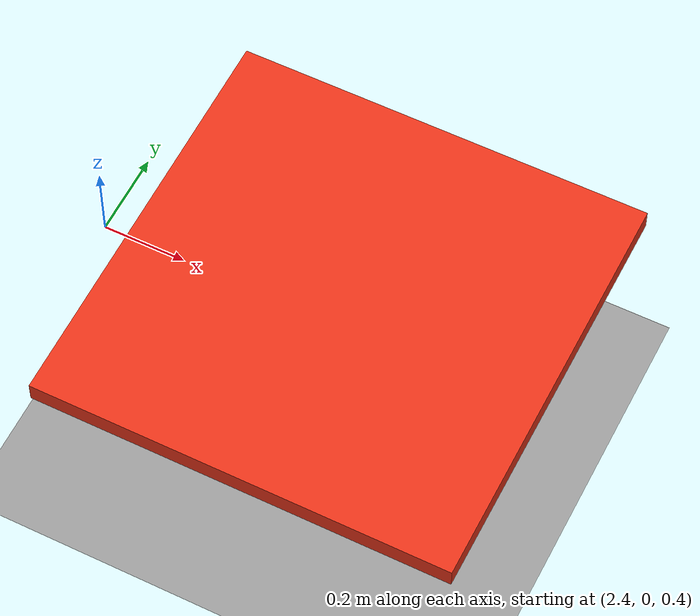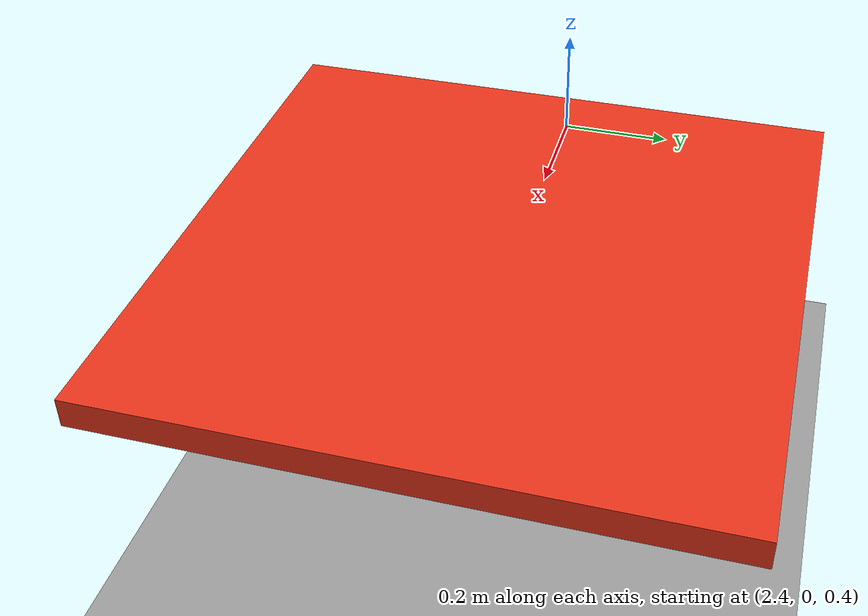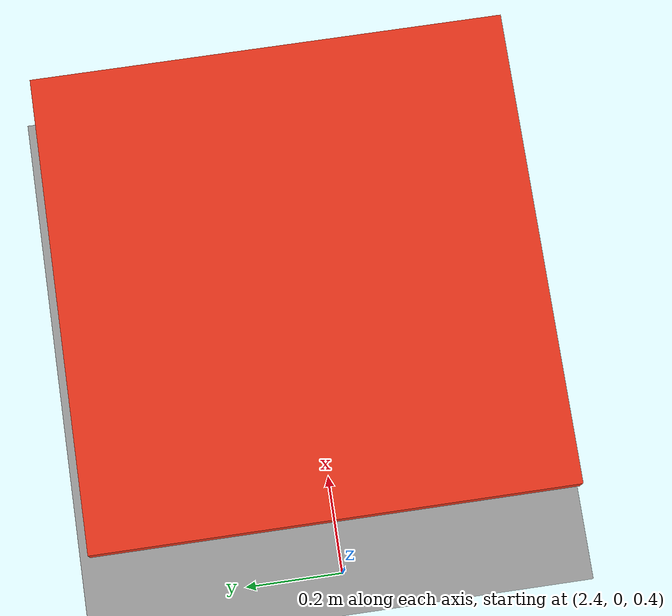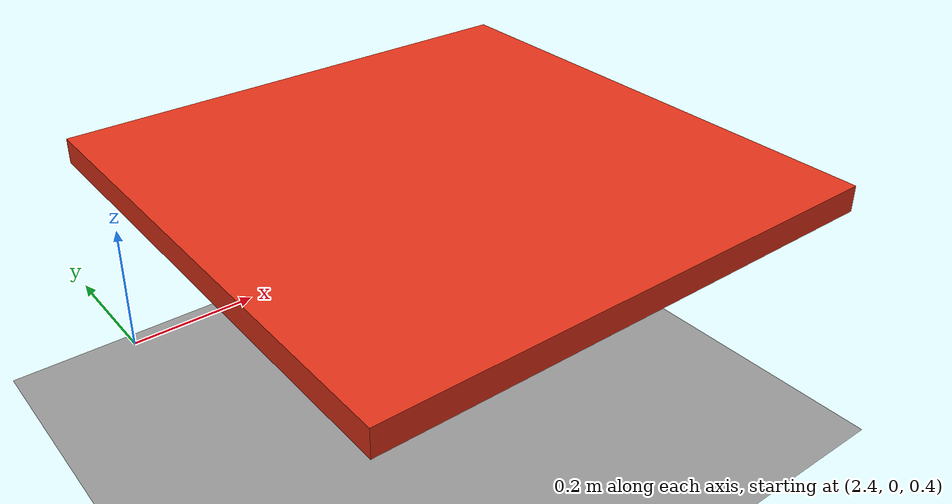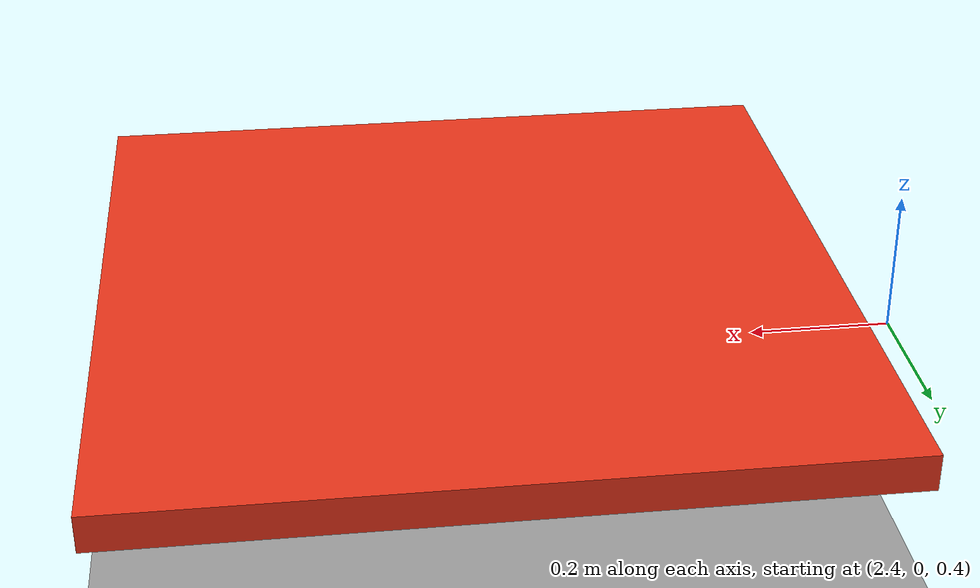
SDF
<?xml version="1.0" ?>
<sdf version="1.9">
  <world name="pad_motion_test">
    <physics name="1ms" type="ignored">
      <max_step_size>0.001</max_step_size>
      <real_time_factor>1.0</real_time_factor>
    </physics>
    <plugin filename="gz-sim-physics-system" name="gz::sim::systems::Physics"></plugin>
    <plugin filename="gz-sim-scene-broadcaster-system" name="gz::sim::systems::SceneBroadcaster"></plugin>
    <plugin filename="gz-sim-user-commands-system" name="gz::sim::systems::UserCommands"></plugin>

    <light type="directional" name="sun">
      <cast_shadows>true</cast_shadows>
      <pose>0 0 10 0 0 0</pose>
      <diffuse>0.8 0.8 0.8 1</diffuse>
      <specular>0.2 0.2 0.2 1</specular>
      <direction>-0.5 0.1 -0.9</direction>
    </light>

    <model name="ground_plane">
      <static>true</static>
      <link name="link">
        <collision name="collision">
          <geometry><plane><normal>0 0 1</normal></plane></geometry>
        </collision>
        <visual name="visual">
          <geometry>
            <plane>
              <normal>0 0 1</normal>
              <size>100 100</size>
            </plane>
          </geometry>
          <material>
            <ambient>0.6 0.6 0.6 1</ambient>
            <diffuse>0.6 0.6 0.6 1</diffuse>
          </material>
        </visual>
      </link>
    </model>

    <model name="wave_pad">
      <static>true</static>
      <pose>3 0 0.5 0 0 0</pose>
      <link name="pad_link">
        <inertial>
          <mass>50</mass>
          <inertia>
            <ixx>1</ixx><iyy>1</iyy><izz>1</izz>
            <ixy>0</ixy><ixz>0</ixz><iyz>0</iyz>
          </inertia>
        </inertial>
        <collision name="collision">
          <geometry><box><size>1.0 1.0 0.05</size></box></geometry>
        </collision>
        <visual name="visual">
          <geometry><box><size>1.0 1.0 0.05</size></box></geometry>
          <material>
            <ambient>0.9 0.2 0.1 1</ambient>
            <diffuse>0.9 0.2 0.1 1</diffuse>
          </material>
        </visual>
      </link>
      <plugin filename="PadMotionPlugin" name="pad_motion::PadMotionPlugin">
        <odometry_topic>/pad/fmu/out/vehicle_odometry</odometry_topic>
        <publish_rate_hz>50.0</publish_rate_hz>
        <heave_component>
          <amplitude>0.3</amplitude>
          <period_s>4.0</period_s>
          <phase_rad>0.0</phase_rad>
        </heave_component>
        <heave_component>
          <amplitude>0.1</amplitude>
          <period_s>1.7</period_s>
          <phase_rad>1.2</phase_rad>
        </heave_component>
      </plugin>
    </model>
  </world>
</sdf>
